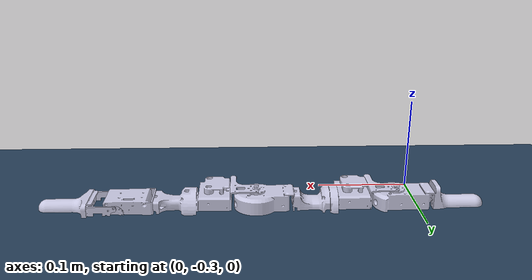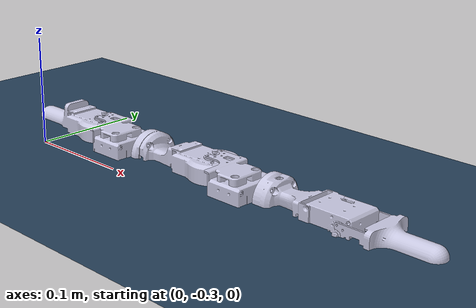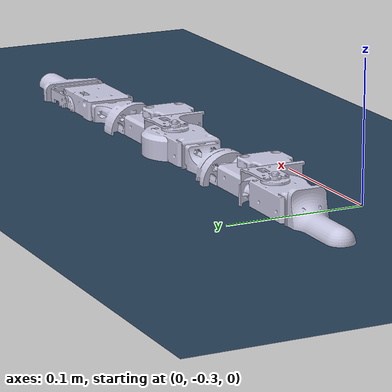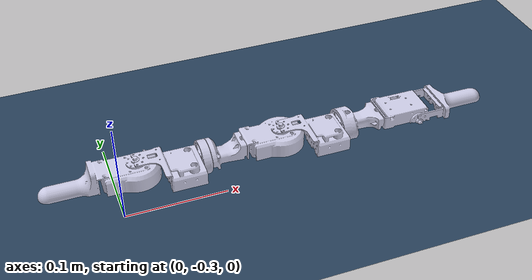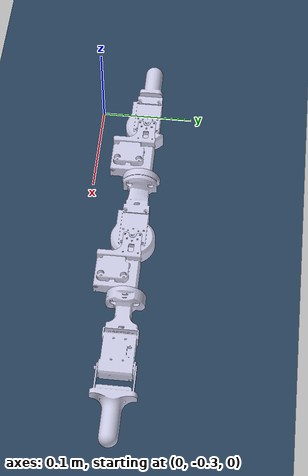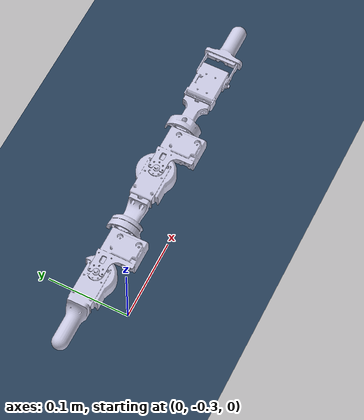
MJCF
<mujoco model="wriggly">

  <compiler angle="radian" autolimits="true"/>

  <default>
      <position forcelimited="true" forcerange="-3 3"/>
  </default>

  <asset>
    <!-- Meshes -->
    <mesh name="base_link" file="../meshes/base_link.STL"/>
    <mesh name="green_leg_holder" file="../meshes/green_leg_holder.STL"/>
    <mesh name="central_link" file="../meshes/central_link.STL"/>
    <mesh name="red_central" file="../meshes/red_central.STL"/>
    <mesh name="red_leg_holder" file="../meshes/red_leg_holder.STL"/>
    <mesh name="red_leg" file="../meshes/red_leg.STL"/>
    <!-- Textures -->
    <texture type="skybox" builtin="gradient" rgb1="0.3 0.5 0.7" rgb2="0 0 0" width="512" height="3072"/>
    <texture type="2d" name="groundplane" builtin="checker" mark="edge" rgb1="0.2 0.3 0.4" rgb2="0.1 0.2 0.3" markrgb="0.8 0.8 0.8" width="300" height="300"/>
    <!-- Materials -->
    <material name="groundplane" texture="groundplane" texuniform="true" texrepeat="5 5" reflectance="0.2"/>
  </asset>

  <worldbody>
    <!-- Floor -->
    <geom name="floor" condim="3" friction="0.9" size="0 0 0.05" type="plane" material="groundplane"/>
    <!-- Light -->
    <light name="ceiling" pos="0 0 2" dir="0 0 -1" directional="true"/>
    <!-- Cameras -->
    <camera name="target_from_origin" pos="0 0 1.25" xyaxes="0 -1 0 1 0 0"/>
    <camera name="fixed_right" pos="2 -3 0.5" xyaxes="1 0 0 0 0.08 0.92" fovy="15" mode="fixed"/>

    <!-- Green Leg -->
    <body name="green_leg">
        <!-- Joint -->
        <joint limited = "true" name="asdf" pos="0 0 0" type="free" damping="0.1" armature="0.005" frictionloss="0.01"/>
        <!-- Base Link -->
        <geom type="mesh" rgba="0.8 0.8 0.9 1" mesh="base_link"/>

        <!-- Green Leg Holder -->
        <body name="Green_Leg_Holder" pos="0.3235 -0.23065 0" quat="0.5 -0.5 0.5 -0.5" gravcomp="0">
          <inertial pos="0.0172732 -1.71313e-05 -0.0312874" quat="0.707094 0.00279184 0.00136492 0.707112" mass="0.101" diaginertia="1.71483e-05 1.52784e-05 1.18772e-05"/>
          <joint name="Green_Leg_Final_Joint" pos="0 0 0" axis="1 0 0" damping="0.1" armature="0.005" frictionloss="0.01"/>
          <geom type="mesh" rgba="0.8 0.8 0.9 1" mesh="green_leg_holder"/>

          <!-- Central Link -->
          <body name="Central_Link" pos="0.017 0 -0.1045" quat="0.707107 0 0 0.707107" gravcomp="0">
            <inertial pos="9.37688e-10 -0.0119557 -0.00143737" quat="0.707745 0.706468 -1.73858e-06 1.74172e-06" mass="0.091" diaginertia="1.40798e-05 1.31645e-05 8.83029e-06"/>
            <joint name="Green_Leg_Central_Joint" pos="0 0 0" axis="0 0 1" damping="0.1" armature="0.005" frictionloss="0.01"/>
            <geom type="mesh" rgba="0.8 0.8 0.9 1" mesh="central_link"/>

            <!-- Red Leg Central Link -->
            <body name="Red_Leg_Central_Link" pos="0 0 -0.04515" quat="0.5 0.5 0.5 0.5" gravcomp="0">
              <inertial pos="-0.000634684 -0.0270609 -0.000240499" quat="0.707212 0.704458 -0.0410108 -0.0436829" mass="0.113" diaginertia="2.05457e-05 1.98685e-05 1.50592e-05"/>
              <joint name="Red_Leg_Central_Joint" pos="0 0 0" axis="0 0 1" damping="0.1" armature="0.005" frictionloss="0.01"/>
              <geom type="mesh" rgba="0.8 0.8 0.9 1" mesh="red_central"/>

              <!-- Red Leg Holder -->
              <body name="Red_Leg_Holder" pos="0 -0.10485 0" quat="-0.5 0.5 0.5 0.5" gravcomp="0">
                <inertial pos="9.37688e-10 -0.0119557 -0.00143737" quat="0.707745 0.706468 -1.73858e-06 1.74172e-06" mass="0.091" diaginertia="1.40798e-05 1.31645e-05 8.83029e-06"/>
                <joint name="Red_Knee" pos="0 0 0" axis="0 0 1" damping="0.1" armature="0.005" frictionloss="0.01"/>
                <geom type="mesh" rgba="0.8 0.8 0.9 1" mesh="red_leg_holder"/>

                <!-- Red Leg -->
                <body name="Red_Leg" pos="0 0 -0.045" quat="0.5 -0.5 0.5 -0.5" gravcomp="0">
                  <inertial pos="0.00101128 0.025027 -0.000247357" quat="0.705699 0.707278 -0.0298534 -0.0292677" mass="0.112" diaginertia="2.31293e-05 2.08201e-05 1.20376e-05"/>
                  <joint name="Red_Leg_Final_Joint" pos="0 0 0" axis="0 0 1" damping="0.1" armature="0.005" frictionloss="0.01"/>
                  <geom type="mesh" rgba="0.8 0.8 0.9 1" mesh="red_leg"/>
                </body>
              </body>
            </body>
          </body>
        </body>
    </body>
  </worldbody>

  <actuator>
      <position name="act0" kp ="0.7" joint="Green_Leg_Final_Joint"   ctrlrange="-1.57 1.57"/>
      <position name="act1" kp ="0.7" joint="Green_Leg_Central_Joint" ctrlrange="-3.14 3.14"/>
      <position name="act2" kp ="0.7" joint="Red_Leg_Central_Joint"   ctrlrange="-1.57 1.57"/>
      <position name="act3" kp ="0.7" joint="Red_Knee"                ctrlrange="-3.14 3.14"/>
      <position name="act4" kp ="0.7" joint="Red_Leg_Final_Joint"     ctrlrange="-1.57 1.57"/>
  </actuator>

  <sensor>
    <jointpos name="ACT0_pos_sensor" joint="Green_Leg_Final_Joint"/>
    <jointpos name="ACT1_pos_sensor" joint="Green_Leg_Central_Joint"/>
    <jointpos name="ACT2_pos_sensor" joint="Red_Leg_Central_Joint"/>
    <jointpos name="ACT3_pos_sensor" joint="Red_Knee"/>
    <jointpos name="ACT4_pos_sensor" joint="Red_Leg_Final_Joint"/>

    <jointvel name="ACT0_velocity_sensor" joint="Green_Leg_Final_Joint"/>
    <jointvel name="ACT1_velocity_sensor" joint="Green_Leg_Central_Joint"/>
    <jointvel name="ACT2_velocity_sensor" joint="Red_Leg_Central_Joint"/>
    <jointvel name="ACT3_velocity_sensor" joint="Red_Knee"/>
    <jointvel name="ACT4_velocity_sensor" joint="Red_Leg_Final_Joint"/>
  </sensor>
</mujoco>
